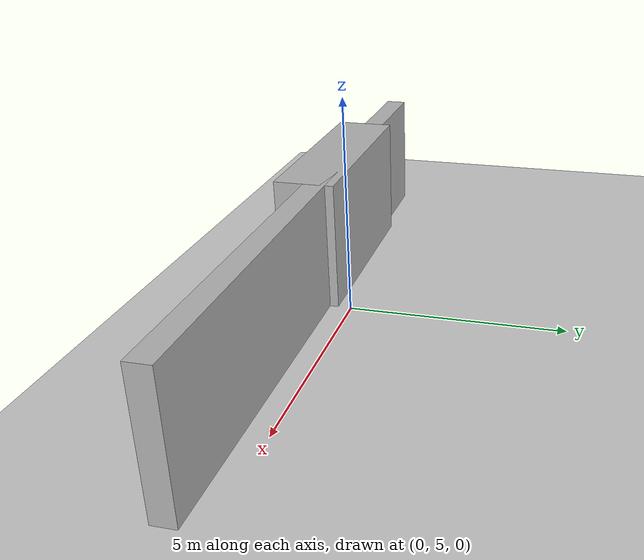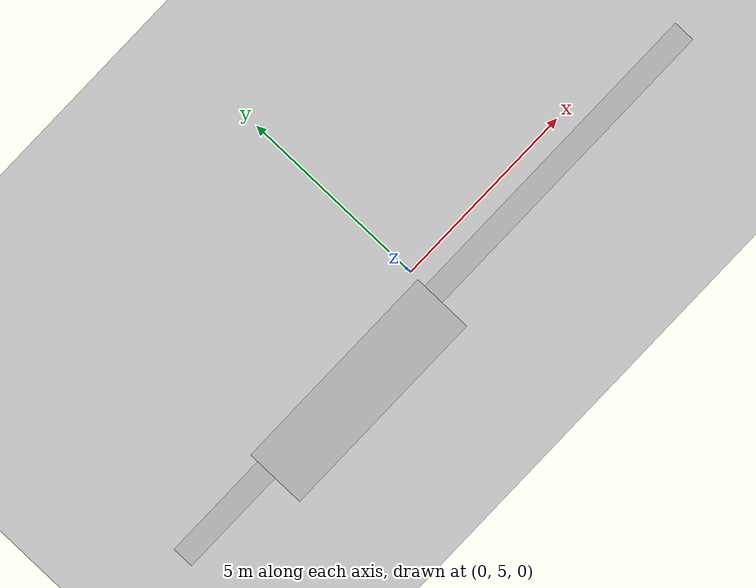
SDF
<?xml version="1.0" ?>
<sdf version="1.6">
  <world name="external_corner_stub">

    <include>
      <uri>model://ground_plane</uri>
    </include>
    <include>
      <uri>model://sun</uri>
    </include>

    <model name="external_corner_test_wall">
      <static>true</static>
      <pose>0 0 0 0 0 0</pose>
      <link name="link">

        <!-- Long wall section before the external corner: widened/lengthened -->
        <visual name="v_long_approach_wall">
          <pose>-2.50 4.0 1.5 0 0 0</pose>
          <geometry>
            <box>
              <size>5 1.4 3.0</size>
            </box>
          </geometry>
        </visual>
        <collision name="c_long_approach_wall">
          <pose>-2.50 4.0 1.5 0 0 0</pose>
          <geometry>
            <box>
              <size>5 4.0 3.0</size>
            </box>
          </geometry>
        </collision>

        <!-- Perpendicular return wall at the end, creating the external corner -->
        <visual name="v_corner_return_wall">
          <pose>0 4.25 1.5 0 0 0</pose>
          <geometry>
            <box>
              <size>15 0.5 3.0</size>
            </box>
          </geometry>
        </visual>
        <collision name="c_corner_return_wall">
          <pose>0 4.25 1.5 0 0 0</pose>
          <geometry>
            <box>
              <size>15 0.5 3.0</size>
            </box>
          </geometry>
        </collision>

      </link>
    </model>

  </world>
</sdf>
